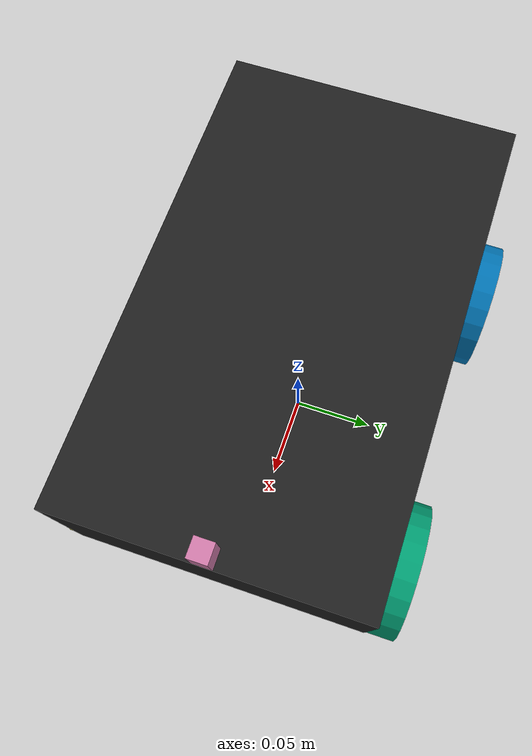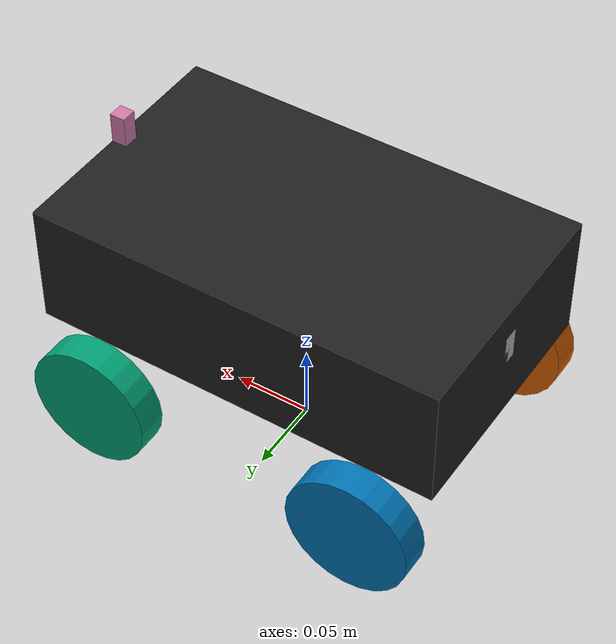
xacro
<?xml version = "1.0" ?>

<robot xmlns:xacro="http://www.ros.org/wiki/xacro">

    <xacro:property name="base_length" value="0.265" />
    <xacro:property name="base_width" value="0.16" />
    <xacro:property name="base_height" value="0.08" />

    <xacro:property name="wheel_radius" value="0.04" />
    <xacro:property name="wheel_width" value="0.02" />

    <xacro:macro name="wheel_link" params="prefix">
        <link name="${prefix}_wheel_link">
            <visual>
                <geometry>
                    <cylinder radius="${wheel_radius}" length="${wheel_width}"/>
                </geometry>
                <origin xyz="0 0 0" rpy="${pi/2} 0 0"/>
                <material name="argint"/>
            </visual>
            <xacro:cylinder_inertia m="0.1" r="${wheel_radius}" h="${wheel_width}" o_xyz="0 0 0" o_rpy="${pi/2} 0 0"/>
            <collision>
                <geometry>
                    <sphere radius="${wheel_radius}"/>
                </geometry>
                <origin xyz="0 0 0" rpy="${pi/2} 0 0"/>
            </collision>
        </link>
    </xacro:macro>

    <link name="base_footprint" />

    <joint name="base_base_footprint" type="fixed">
        <parent link="base_footprint"/>
        <child link="base_link"/>
        <origin xyz="0 0 ${wheel_radius * 2}" rpy="0 0 0"/>
    </joint>

    <link name="base_link">
        <visual>
            <geometry>
                <box size="${base_length} ${base_width} ${base_height}"/>
            </geometry>
            <origin xyz="0 0 ${base_height / 2}" rpy="0 0 0"/>
            <material name="black"/>
        </visual>
        <xacro:box_inertia m="1.9" x="${base_length}" y="${base_width}" z="${base_height}" o_xyz="0 0 ${base_height / 2}" o_rpy="0 0 0"/>
        <collision>
            <geometry>
                <box size="${base_length} ${base_width} ${base_height}"/>
            </geometry>
            <origin xyz="0 0 ${base_height / 2}" rpy="0 0 0"/>
        </collision>
    </link>

    <joint name="base_front_left" type="continuous">
        <parent link="base_link"/>
        <child link="front_left_wheel_link"/>
        <origin xyz="0.09 ${(base_width / 2) + (wheel_width /2)} -${wheel_radius}" rpy="0 0 0"/>
        <axis xyz="0 1 0"/>
    </joint>

    <xacro:wheel_link prefix="front_left"/>

    <joint name="base_front_right" type="continuous">
        <parent link="base_link"/>
        <child link="front_right_wheel_link"/>
        <origin xyz="0.09 -${(base_width / 2) + (wheel_width /2)} -${wheel_radius}" rpy="0 0 0"/>
        <axis xyz="0 1 0"/>
    </joint>

    <xacro:wheel_link prefix="front_right"/>

    <joint name="base_rear_left" type="continuous">
        <parent link="base_link"/>
        <child link="rear_left_wheel_link"/>
        <origin xyz="-0.09 ${(base_width / 2) + (wheel_width /2)} -${wheel_radius}" rpy="0 0 0"/>
        <axis xyz="0 1 0"/>
    </joint>

    <xacro:wheel_link prefix="rear_left"/>

    <joint name="base_rear_right" type="continuous">
        <parent link="base_link"/>
        <child link="rear_right_wheel_link"/>
        <origin xyz="-0.09 -${(base_width / 2) + (wheel_width /2)} -${wheel_radius}" rpy="0 0 0"/>
        <axis xyz="0 1 0"/>
    </joint>

    <xacro:wheel_link prefix="rear_right"/>

    <joint name="base_tof" type="fixed">
        <parent link="base_link"/>
        <child link="tof_link"/>
        <origin xyz="${base_length / 2} 0 ${base_height}" rpy="0 0 0"/>
    </joint>

    <link name="tof_link">
        <visual>
            <geometry>
                <box size="0.01 0.01 0.02"/>
            </geometry>
            <origin xyz="-0.005 0 0.01" rpy="0 0 0"/>
            <material name="galben"/>
        </visual>
    </link>

    <joint name="base_imu" type="fixed">
        <parent link="base_link"/>
        <child link="imu_link"/>
        <origin xyz="-${base_length / 2} 0 ${(base_height / 2)}" rpy="0 0 0"/>
    </joint>

    <link name="imu_link">
        <visual>
            <geometry>
                <box size="0.01 0.01 0.02"/>
            </geometry>
            <origin xyz="0.005 0 0.01" rpy="0 0 0"/>
            <material name="galben"/>
        </visual>
    </link>

</robot>
